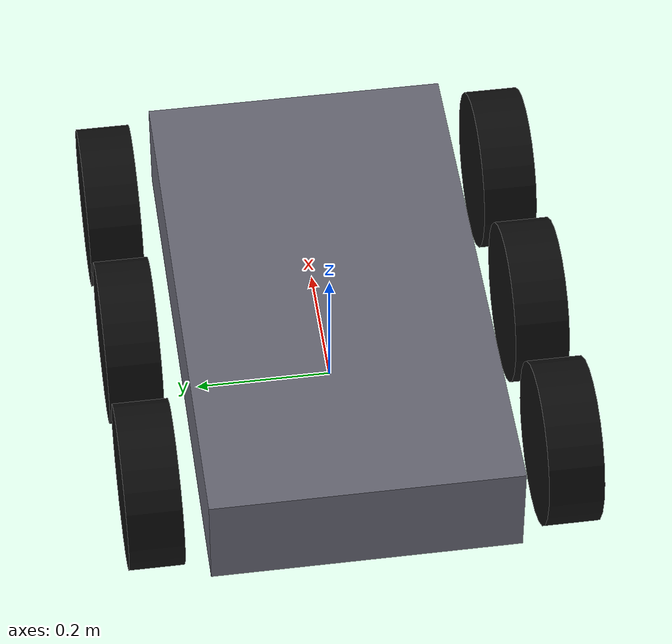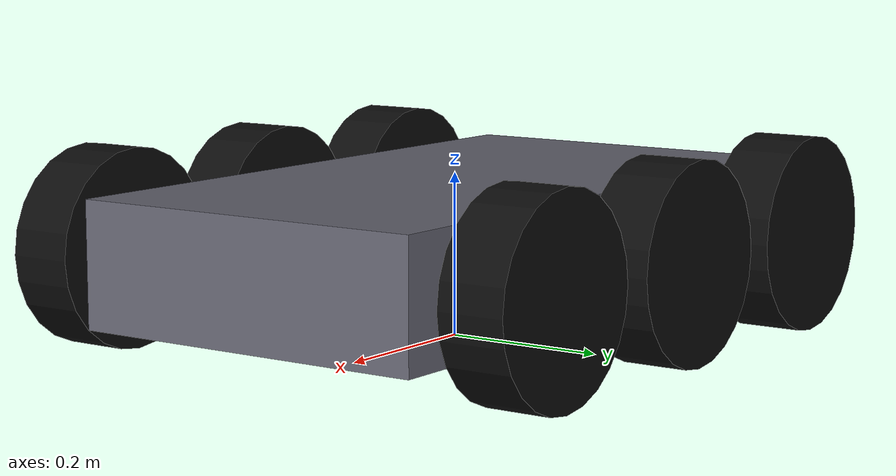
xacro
<?xml version="1.0"?>
<!-- 6x6 skid-steer UGV with stereo camera + IMU. Gazebo Fortress (Humble ros_gz). -->
<robot name="ugv" xmlns:xacro="http://www.ros.org/wiki/xacro">
  <xacro:property name="body_l" value="0.80"/>
  <xacro:property name="body_w" value="0.45"/>
  <xacro:property name="body_h" value="0.15"/>
  <xacro:property name="wheel_r" value="0.12"/>
  <xacro:property name="wheel_t" value="0.08"/>
  <xacro:property name="track" value="0.60"/>
  <xacro:property name="baseline" value="0.12"/>

  <link name="base_footprint"/>
  <joint name="footprint_joint" type="fixed">
    <parent link="base_footprint"/><child link="base_link"/>
    <origin xyz="0 0 ${wheel_r}"/>
  </joint>

  <link name="base_link">
    <visual><geometry><box size="${body_l} ${body_w} ${body_h}"/></geometry>
      <material name="grey"><color rgba="0.4 0.4 0.45 1"/></material></visual>
    <collision><geometry><box size="${body_l} ${body_w} ${body_h}"/></geometry></collision>
    <inertial><mass value="30"/>
      <inertia ixx="1.2" iyy="2.2" izz="3.0" ixy="0" ixz="0" iyz="0"/></inertial>
  </link>

  <xacro:macro name="wheel" params="name x y">
    <link name="${name}_wheel">
      <visual><origin rpy="1.5708 0 0"/>
        <geometry><cylinder radius="${wheel_r}" length="${wheel_t}"/></geometry>
        <material name="black"><color rgba="0.05 0.05 0.05 1"/></material></visual>
      <collision><origin rpy="1.5708 0 0"/>
        <geometry><cylinder radius="${wheel_r}" length="${wheel_t}"/></geometry></collision>
      <inertial><mass value="1.0"/>
        <inertia ixx="0.005" iyy="0.008" izz="0.005" ixy="0" ixz="0" iyz="0"/></inertial>
    </link>
    <joint name="${name}_wheel_joint" type="continuous">
      <parent link="base_link"/><child link="${name}_wheel"/>
      <origin xyz="${x} ${y} 0"/><axis xyz="0 1 0"/>
    </joint>
    <gazebo reference="${name}_wheel">
      <mu1>0.8</mu1><mu2>0.15</mu2><fdir1>1 0 0</fdir1>
    </gazebo>
  </xacro:macro>

  <!-- left / right x front, middle, rear -->
  <xacro:wheel name="lf" x="0.28"  y="${track/2}"/>
  <xacro:wheel name="lm" x="0.0"   y="${track/2}"/>
  <xacro:wheel name="lr" x="-0.28" y="${track/2}"/>
  <xacro:wheel name="rf" x="0.28"  y="${-track/2}"/>
  <xacro:wheel name="rm" x="0.0"   y="${-track/2}"/>
  <xacro:wheel name="rr" x="-0.28" y="${-track/2}"/>

  <!-- IMU -->
  <link name="imu_link"/>
  <joint name="imu_joint" type="fixed">
    <parent link="base_link"/><child link="imu_link"/><origin xyz="0.30 0 0.10"/>
  </joint>

  <!-- Stereo pair (optical frame convention is handled via ros_gz bridge frame ids) -->
  <xacro:macro name="cam" params="name y">
    <link name="${name}_cam_link"/>
    <joint name="${name}_cam_joint" type="fixed">
      <parent link="base_link"/><child link="${name}_cam_link"/>
      <origin xyz="0.38 ${y} 0.12"/>
    </joint>
    <link name="${name}_cam_optical"/>
    <joint name="${name}_optical_joint" type="fixed">
      <parent link="${name}_cam_link"/><child link="${name}_cam_optical"/>
      <origin rpy="-1.5707963 0 -1.5707963"/>
    </joint>
  </xacro:macro>
  <xacro:cam name="left"  y="${baseline/2}"/>
  <xacro:cam name="right" y="${-baseline/2}"/>

  <gazebo>
    <plugin filename="ignition-gazebo-diff-drive-system"
            name="ignition::gazebo::systems::DiffDrive">
      <left_joint>lf_wheel_joint</left_joint>
      <left_joint>lm_wheel_joint</left_joint>
      <left_joint>lr_wheel_joint</left_joint>
      <right_joint>rf_wheel_joint</right_joint>
      <right_joint>rm_wheel_joint</right_joint>
      <right_joint>rr_wheel_joint</right_joint>
      <wheel_separation>${track}</wheel_separation>
      <wheel_radius>${wheel_r}</wheel_radius>
      <max_linear_velocity>1.0</max_linear_velocity>
      <max_angular_velocity>0.8</max_angular_velocity>
      <topic>cmd_vel</topic>
      <!-- Wheel-based odometry is NOT ground truth (wheels slip on a skid-steer); discard it.
           The real robot has no encoders, so nothing may consume this. -->
      <odom_topic>wheel_odom_unused</odom_topic>
      <tf_topic>wheel_tf_unused</tf_topic>
      <frame_id>world</frame_id>
      <child_frame_id>base_link</child_frame_id>
    </plugin>
  </gazebo>

  <!-- True model pose from the simulator, for evaluation only (evo / trace_run.py). -->
  <gazebo>
    <plugin filename="ignition-gazebo-odometry-publisher-system"
            name="ignition::gazebo::systems::OdometryPublisher">
      <odom_frame>world</odom_frame>
      <robot_base_frame>base_link</robot_base_frame>
      <dimensions>3</dimensions>
      <odom_publish_frequency>30</odom_publish_frequency>
      <odom_topic>ground_truth/odom</odom_topic>
      <tf_topic>ground_truth/tf_unused</tf_topic>
    </plugin>
  </gazebo>

  <gazebo reference="imu_link">
    <sensor name="imu" type="imu">
      <always_on>1</always_on><update_rate>200</update_rate>
      <topic>imu</topic>
      <ignition_frame_id>imu_link</ignition_frame_id>
    </sensor>
  </gazebo>

  <xacro:macro name="cam_sensor" params="name">
    <gazebo reference="${name}_cam_link">
      <sensor name="${name}_cam" type="camera">
        <always_on>1</always_on><update_rate>20</update_rate>
        <topic>stereo/${name}/image_raw</topic>
        <ignition_frame_id>${name}_cam_optical</ignition_frame_id>
        <camera>
          <horizontal_fov>1.4</horizontal_fov>
          <image><width>640</width><height>480</height><format>L8</format></image>
          <clip><near>0.1</near><far>30</far></clip>
        </camera>
      </sensor>
    </gazebo>
  </xacro:macro>
  <xacro:cam_sensor name="left"/>
  <xacro:cam_sensor name="right"/>
</robot>
